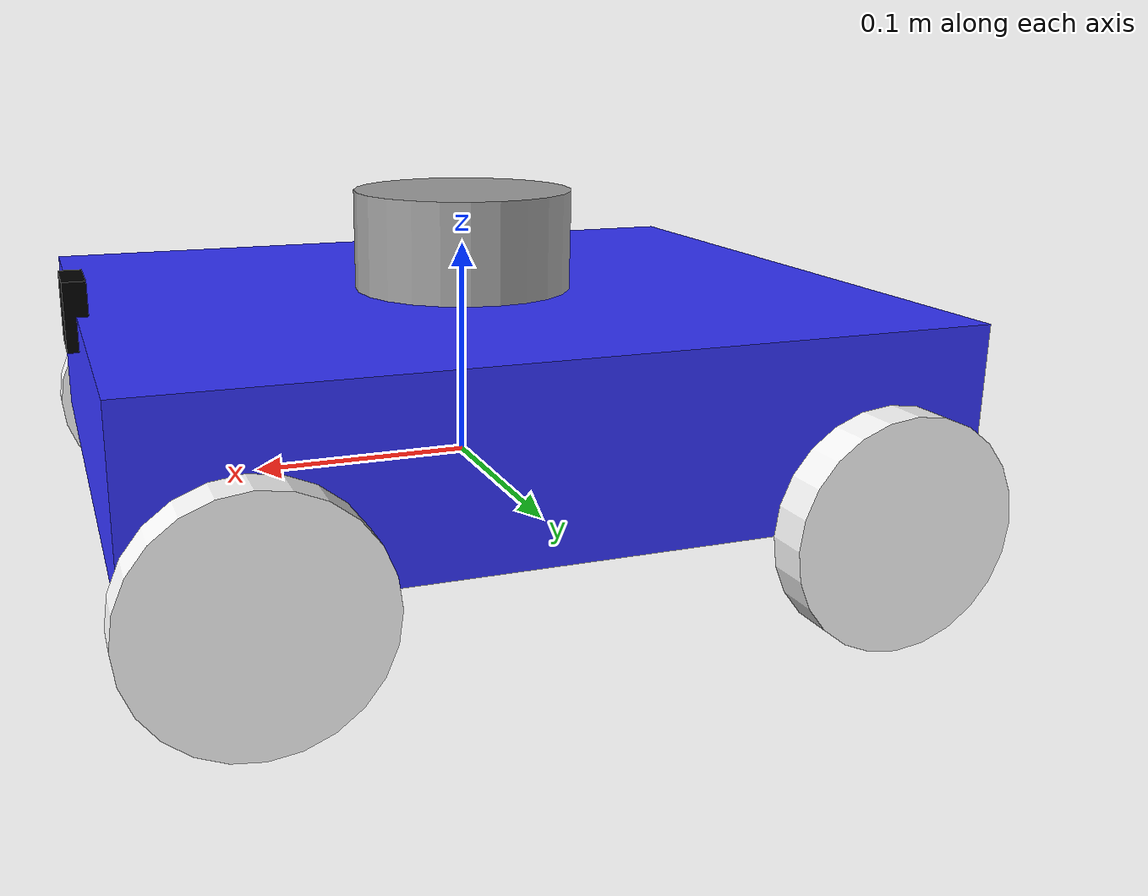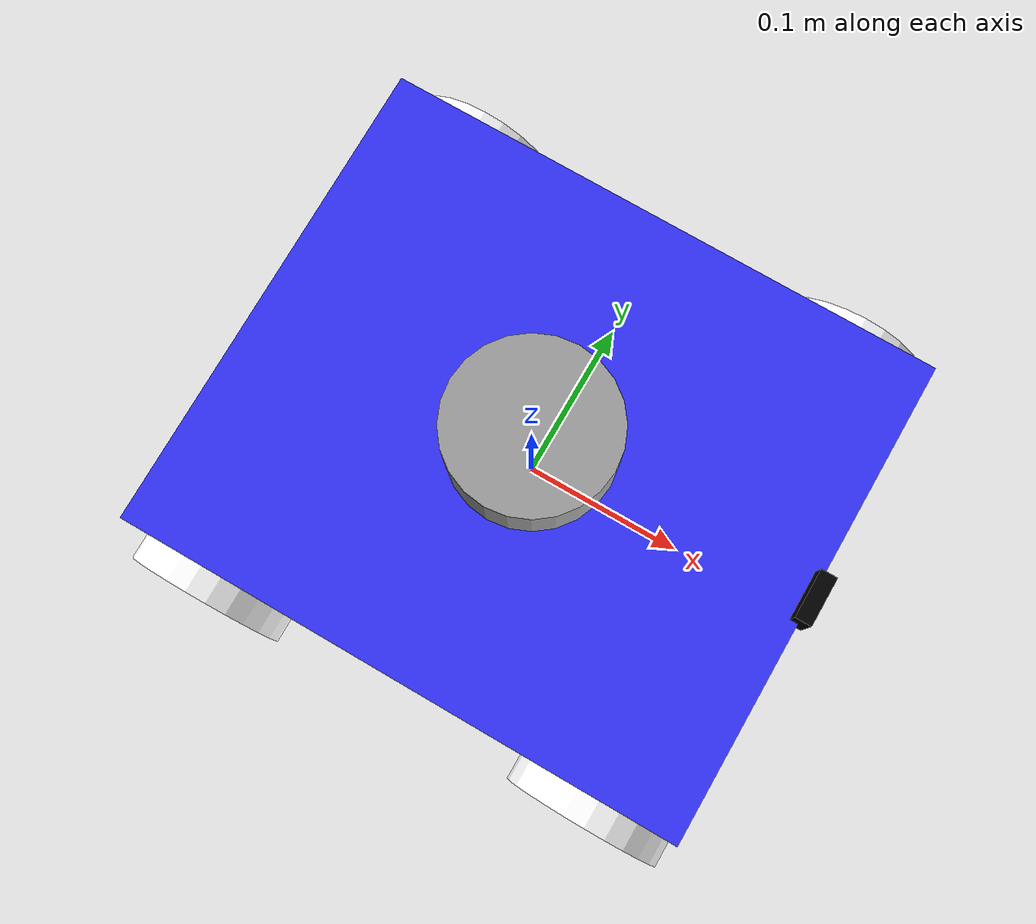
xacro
<?xml version="1.0"?>
<robot xmlns:xacro="http://www.ros.org/wiki/xacro" name="robot">

    <xacro:arg name="use_ros2_control" default="true" />
    <xacro:arg name="sim_mode" default="false" />

    <xacro:include filename="robot_core_four.xacro" />

    <xacro:if value="$(arg use_ros2_control)">
        <xacro:include filename="ros2_control.xacro" />
    </xacro:if>
    <xacro:unless value="$(arg use_ros2_control)">
        <xacro:include filename="gazebo_control.xacro" />
    </xacro:unless>
    <xacro:include filename="lidar.xacro" />
    <xacro:include filename="camera.xacro" />

</robot>

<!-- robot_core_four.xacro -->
<robot xmlns:xacro="http://www.ros.org/wiki/xacro">

    <!-- Include general xacro files -->
    <xacro:include filename="common.xacro" />

    <!-- Robot Variables -->
    <xacro:property name="chassis_length" value="0.35" />
    <xacro:property name="chassis_width" value="0.3" />
    <xacro:property name="chassis_height" value="0.08" />
    <xacro:property name="chassis_mass" value="4.0" />
    <xacro:property name="wheel_radius" value="0.05" />
    <xacro:property name="wheel_thickness" value="0.018" />
    <xacro:property name="wheel_mass" value="0.3" />
    <xacro:property name="wheel_offset_x" value="0.13" />
    <xacro:property name="wheel_offset_y" value="${chassis_width/2 + wheel_thickness/2}" />
    <xacro:property name="wheel_offset_z" value="0.0" />

    <!-- BASE LINK -->
    <link name="base_link"></link>

    <!-- BASE_FOOTPRINT LINK -->
    <joint name="base_footprint_joint" type="fixed">
        <parent link="base_link" />
        <child link="base_footprint" />
        <origin xyz="0 0 0" rpy="0 0 0" />
    </joint>
    <link name="base_footprint"></link>

    <!-- CHASSIS LINK -->
    <joint name="chassis_joint" type="fixed">
        <parent link="base_link" />
        <child link="chassis" />
        <origin xyz="0 0 0" />
    </joint>
    <link name="chassis">
        <visual>
            <origin xyz="0 0 ${chassis_height/2}" />
            <geometry>
                <box size="${chassis_length} ${chassis_width} ${chassis_height}" />
            </geometry>
            <material name="blue" />
        </visual>
        <collision>
            <origin xyz="0 0 ${chassis_height/2}" />
            <geometry>
                <box size="${chassis_length} ${chassis_width} ${chassis_height}" />
            </geometry>
        </collision>
        <xacro:inertial_box mass="0.5" x="${chassis_length}" y="${chassis_width}"
            z="${chassis_height}">
            <origin xyz="0 0 ${chassis_height/2}" rpy="0 0 0" />
        </xacro:inertial_box>
    </link>

    <!-- Front Left Wheel -->
    <joint name="front_left_wheel_joint" type="continuous">
        <parent link="base_link" />
        <child link="front_left_wheel" />
        <origin xyz="${wheel_offset_x} ${wheel_offset_y} 0" rpy="-${pi/2} 0 0" />
        <axis xyz="0 0 1" />
    </joint>
    <link name="front_left_wheel">
        <visual>
            <geometry>
                <cylinder radius="${wheel_radius}" length="${wheel_thickness}" />
            </geometry>
            <material name="white" />
        </visual>
        <collision>
            <geometry>
                <sphere radius="${wheel_radius}" />
            </geometry>
        </collision>
        <xacro:inertial_cylinder mass="${wheel_mass}" length="${wheel_thickness}"
            radius="${wheel_radius}">
            <origin xyz="0 0 0" rpy="0 0 0" />
        </xacro:inertial_cylinder>
    </link>

    <!-- Front Right Wheel -->
    <joint name="front_right_wheel_joint" type="continuous">
        <parent link="base_link" />
        <child link="front_right_wheel" />
        <origin xyz="${wheel_offset_x} ${-wheel_offset_y} 0" rpy="${pi/2} 0 0" />
        <axis xyz="0 0 -1" />
    </joint>
    <link name="front_right_wheel">
        <visual>
            <geometry>
                <cylinder radius="${wheel_radius}" length="${wheel_thickness}" />
            </geometry>
            <material name="white" />
        </visual>
        <collision>
            <geometry>
                <sphere radius="${wheel_radius}" />
            </geometry>
        </collision>
        <xacro:inertial_cylinder mass="${wheel_mass}" length="${wheel_thickness}"
            radius="${wheel_radius}">
            <origin xyz="0 0 0" rpy="0 0 0" />
        </xacro:inertial_cylinder>
    </link>

    <!-- Rear Left Wheel -->
    <joint name="rear_left_wheel_joint" type="continuous">
        <parent link="base_link" />
        <child link="rear_left_wheel" />
        <origin xyz="${-wheel_offset_x} ${wheel_offset_y} 0" rpy="-${pi/2} 0 0" />
        <axis xyz="0 0 1" />
    </joint>
    <link name="rear_left_wheel">
        <visual>
            <geometry>
                <cylinder radius="${wheel_radius}" length="${wheel_thickness}" />
            </geometry>
            <material name="white" />
        </visual>
        <collision>
            <geometry>
                <sphere radius="${wheel_radius}" />
            </geometry>
        </collision>
        <xacro:inertial_cylinder mass="${wheel_mass}" length="${wheel_thickness}"
            radius="${wheel_radius}">
            <origin xyz="0 0 0" rpy="0 0 0" />
        </xacro:inertial_cylinder>
    </link>

    <!-- Rear Right Wheel -->
    <joint name="rear_right_wheel_joint" type="continuous">
        <parent link="base_link" />
        <child link="rear_right_wheel" />
        <origin xyz="${-wheel_offset_x} ${-wheel_offset_y} 0" rpy="${pi/2} 0 0" />
        <axis xyz="0 0 -1" />
    </joint>
    <link name="rear_right_wheel">
        <visual>
            <geometry>
                <cylinder radius="${wheel_radius}" length="${wheel_thickness}" />
            </geometry>
            <material name="white" />
        </visual>
        <collision>
            <geometry>
                <sphere radius="${wheel_radius}" />
            </geometry>
        </collision>
        <xacro:inertial_cylinder mass="${wheel_mass}" length="${wheel_thickness}"
            radius="${wheel_radius}">
            <origin xyz="0 0 0" rpy="0 0 0" />
        </xacro:inertial_cylinder>
    </link>

    <!-- Gazebo -->
    <gazebo reference="chassis">
        <material>Gazebo/Blue</material>
    </gazebo>

    <gazebo reference="front_left_wheel">
        <material>Gazebo/White</material>
    </gazebo>

    <gazebo reference="front_right_wheel">
        <material>Gazebo/White</material>
    </gazebo>

    <gazebo reference="rear_left_wheel">
        <material>Gazebo/White</material>
    </gazebo>

    <gazebo reference="rear_right_wheel">
        <material>Gazebo/White</material>
    </gazebo>

</robot>

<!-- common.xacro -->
<robot xmlns:xacro="http://www.ros.org/wiki/xacro">
  <!-- This file contains the macros used across the URDF files -->

  <!-- Inertial Macros -->
  <!-- Inertial Sphere Macros -->
  <xacro:macro name="inertial_sphere" params="mass radius *origin">
    <inertial>
      <xacro:insert_block name="origin" />
      <mass value="${mass}" />
      <inertia ixx="${(2/5) * mass * (radius*radius)}" ixy="0.0" ixz="0.0"
        iyy="${(2/5) * mass * (radius*radius)}" iyz="0.0"
        izz="${(2/5) * mass * (radius*radius)}" />
    </inertial>
  </xacro:macro>
  <!-- Inertial Box Macros -->
  <xacro:macro name="inertial_box" params="mass x y z *origin">
    <inertial>
      <xacro:insert_block name="origin" />
      <mass value="${mass}" />
      <inertia ixx="${(1/12) * mass * (y*y+z*z)}" ixy="0.0" ixz="0.0"
        iyy="${(1/12) * mass * (x*x+z*z)}" iyz="0.0"
        izz="${(1/12) * mass * (x*x+y*y)}" />
    </inertial>
  </xacro:macro>
  <!-- Inertial Cylinder Macros -->
  <xacro:macro name="inertial_cylinder" params="mass length radius *origin">
    <inertial>
      <xacro:insert_block name="origin" />
      <mass value="${mass}" />
      <inertia ixx="${(1/12) * mass * (3*radius*radius + length*length)}" ixy="0.0" ixz="0.0"
        iyy="${(1/12) * mass * (3*radius*radius + length*length)}" iyz="0.0"
        izz="${(1/2) * mass * (radius*radius)}" />
    </inertial>
  </xacro:macro>

  <!-- Material Macros -->
  <material name="white">
    <color rgba="1 1 1 1" />
  </material>

  <material name="orange">
    <color rgba="1 0.3 0.1 1" />
  </material>

  <material name="blue">
    <color rgba="0.2 0.2 1 1" />
  </material>

  <material name="black">
    <color rgba="0 0 0 1" />
  </material>

  <material name="red">
    <color rgba="1 0 0 1" />
  </material>

  <material name="grey">
    <color rgba="0.631 0.631 0.631 1" />
  </material>

  <material name="purple">
    <color rgba="0.78 0.153 0.71 1" />
  </material>

  <material name="green">
    <color rgba="0.149 0.612 0.082 1" />
  </material>

</robot>

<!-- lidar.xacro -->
<robot xmlns:xacro="http://www.ros.org/wiki/xacro">
    <!-- Lidar's urdf-->
    <joint name="laser_joint" type="fixed">
        <parent link="chassis" />
        <child link="laser_frame" />
        <origin xyz="0 0 0.1" rpy="0 0 0" />
    </joint>
    <link name="laser_frame">
        <visual>
            <geometry>
                <cylinder radius="0.05" length="0.05" />
            </geometry>
            <material name="grey" />
        </visual>
        <collision>
            <geometry>
                <cylinder radius="0.05" length="0.05" />
            </geometry>
        </collision>
        <xacro:inertial_cylinder mass="0.1" length="0.05" radius="0.05">
            <origin xyz="0 0 0" rpy="0 0 0" />
        </xacro:inertial_cylinder>
    </link>

    <!-- 2D Lidar New Gazebo Sensor Plugin  -->
    <gazebo reference="laser_frame">
        <material>Gazebo/Grey</material>

        <sensor name="laser" type="gpu_lidar">
            <pose> 0 0 0 0 0 0 </pose>
            <always_on>true</always_on>
            <visualize>true</visualize>
            <update_rate>10</update_rate>
            <topic>scan</topic>
            <gz_frame_id>laser_frame</gz_frame_id>
            <lidar>
                <scan>
                    <horizontal>
                        <samples>360</samples>
                        <min_angle>-3.14</min_angle>
                        <max_angle>3.14</max_angle>
                    </horizontal>
                </scan>
                <range>
                    <min>0.3</min>
                    <max>12</max>
                </range>
            </lidar>
        </sensor>
    </gazebo>

</robot>

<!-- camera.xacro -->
<robot xmlns:xacro="http://www.ros.org/wiki/xacro">
    <!-- Camera's urdf -->
    <joint name="camera_joint" type="fixed">
        <parent link="chassis" />
        <child link="camera_link" />
        <origin xyz="0.175 0 0.08" rpy="0 0 0" />
    </joint>

    <link name="camera_link">
        <visual>
            <geometry>
                <box size="0.010 0.03 0.03" />
            </geometry>
            <material name="black" />
        </visual>
    </link>

    <!-- Camera Optical link -->
    <joint name="camera_optical_joint" type="fixed">
        <parent link="camera_link" />
        <child link="camera_link_optical" />
        <origin xyz="0 0 0" rpy="${-pi/2} 0 ${-pi/2}" />
    </joint>

    <link name="camera_link_optical"></link>

    <!-- Camera Gazebo Sensor Plugin -->
    <gazebo reference="camera_link">
        <material>Gazebo/Black</material>

        <sensor name="camera" type="camera">
            <pose> 0 0 0 0 0 0 </pose>
            <visualize>true</visualize>
            <update_rate>10</update_rate>
            <camera>
                <camera_info_topic>camera/camera_info</camera_info_topic>
                <horizontal_fov>1.089</horizontal_fov>
                <image>
                    <format>R8G8B8</format>
                    <width>640</width>
                    <height>480</height>
                </image>
                <clip>
                    <near>0.05</near>
                    <far>8.0</far>
                </clip>
            </camera>
            <topic>camera/image_raw</topic>
            <gz_frame_id>camera_link_optical</gz_frame_id>
        </sensor>
    </gazebo>

</robot>
